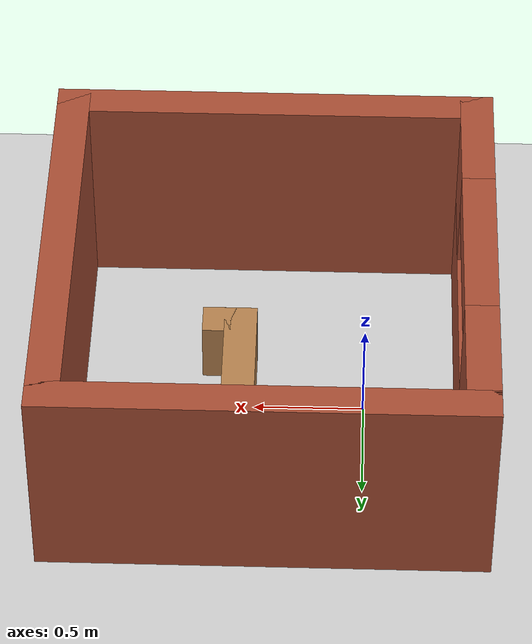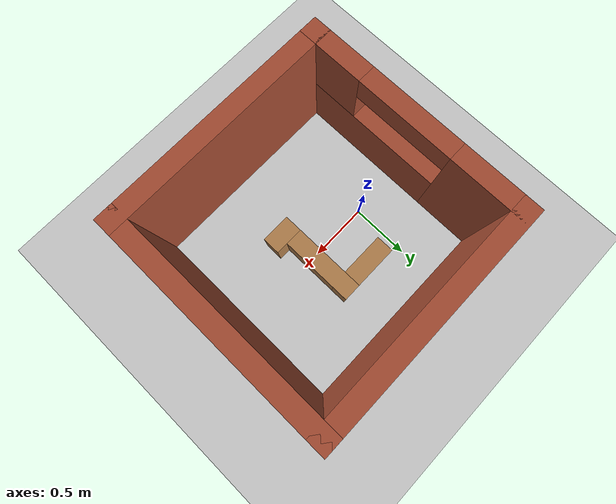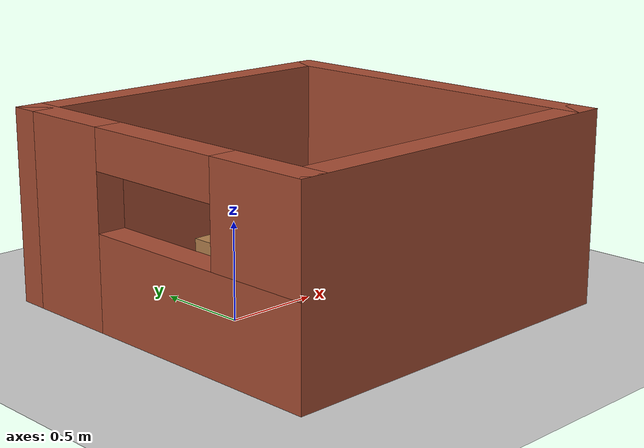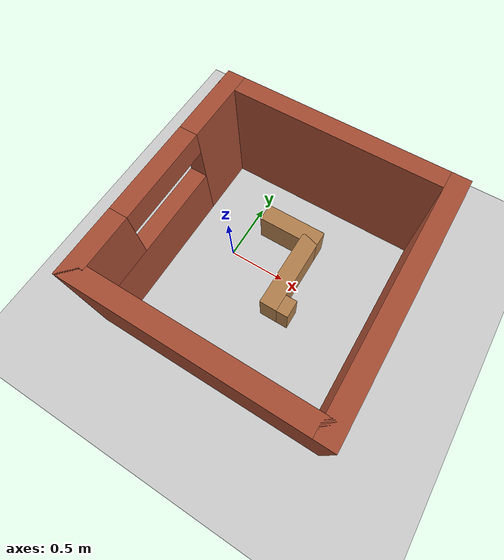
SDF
<sdf version="1.6">
 <world name="default">
  <light name="sun" type="directional">
   <pose>0 0 10 0 -0 0</pose>
   <diffuse>0.8 0.8 0.8 1</diffuse>
   <specular>0.2 0.2 0.2 1</specular>
   <attenuation>
    <range>1000</range>
    <constant>0.9</constant>
    <linear>0.01</linear>
    <quadratic>0.001</quadratic>
   </attenuation>
   <direction>-0.5 0.1 -0.9</direction>
  </light>
  <model name="ground_plane">
   <static>1</static>
   <link name="link">
    <collision name="collision">
     <geometry><plane><normal>0 0 1</normal><size>100 100</size></plane></geometry>
     <surface>
      <contact><collide_bitmask>65535</collide_bitmask></contact>
      <friction><ode><mu>100</mu><mu2>50</mu2></ode></friction>
     </surface>
    </collision>
    <visual name="visual">
     <cast_shadows>0</cast_shadows>
     <geometry><plane><normal>0 0 1</normal><size>100 100</size></plane></geometry>
     <material>
      <script><uri>file://media/materials/scripts/gazebo.material</uri><name>Gazebo/Grey</name></script>
     </material>
    </visual>
   </link>
  </model>
  <gravity>0 0 -9.8</gravity>
  <magnetic_field>6e-06 2.3e-05 -4.2e-05</magnetic_field>
  <atmosphere type="adiabatic"/>
  <physics name="default_physics" default="0" type="ode">
   <max_step_size>0.001</max_step_size>
   <real_time_factor>1</real_time_factor>
   <real_time_update_rate>1000</real_time_update_rate>
  </physics>
  <scene><ambient>0.4 0.4 0.4 1</ambient><background>0.7 0.7 0.7 1</background><shadows>1</shadows></scene>
  <audio><device>default</device></audio>
  <spherical_coordinates>
   <surface_model>EARTH_WGS84</surface_model>
   <latitude_deg>0</latitude_deg>
   <longitude_deg>0</longitude_deg>
   <elevation>0</elevation>
   <heading_deg>0</heading_deg>
  </spherical_coordinates>
  <model name="robot_world">
   <pose>0.432461 -0.048297 0 0 -0 0</pose>
   <link name="Wall_1">
    <pose>-0.925 0 0 0 -0 -1.5708</pose>
    <visual name="Wall_1_Visual_0">
     <pose>-0.675827 0 0.5 0 -0 0</pose>
     <geometry><box><size>0.647856 0.15 1</size></box></geometry>
     <material>
      <script><uri>file://media/materials/scripts/gazebo.material</uri><name>Gazebo/Bricks</name></script>
      <ambient>1 1 1 1</ambient>
     </material>
     <meta><layer>0</layer></meta>
    </visual>
    <collision name="Wall_1_Collision_0">
     <geometry><box><size>0.647856 0.15 1</size></box></geometry>
     <pose>-0.675827 0 0.5 0 -0 0</pose>
    </collision>
    <visual name="Wall_1_Visual_1">
     <pose>0.323928 0 0.246 0 -0 0</pose>
     <geometry><box><size>1.35165 0.15 0.492</size></box></geometry>
     <material>
      <script><uri>file://media/materials/scripts/gazebo.material</uri><name>Gazebo/Bricks</name></script>
      <ambient>1 1 1 1</ambient>
     </material>
     <meta><layer>0</layer></meta>
    </visual>
    <collision name="Wall_1_Collision_1">
     <geometry><box><size>1.35165 0.15 0.492</size></box></geometry>
     <pose>0.323928 0 0.246 0 -0 0</pose>
    </collision>
    <visual name="Wall_1_Visual_2">
     <pose>0.723928 0 0.746 0 -0 0</pose>
     <geometry><box><size>0.551654 0.15 0.508</size></box></geometry>
     <material>
      <script><uri>file://media/materials/scripts/gazebo.material</uri><name>Gazebo/Bricks</name></script>
      <ambient>1 1 1 1</ambient>
     </material>
     <meta><layer>0</layer></meta>
    </visual>
    <collision name="Wall_1_Collision_2">
     <geometry><box><size>0.551654 0.15 0.508</size></box></geometry>
     <pose>0.723928 0 0.746 0 -0 0</pose>
    </collision>
    <visual name="Wall_1_Visual_3">
     <pose>0.048101 0 0.896 0 -0 0</pose>
     <geometry><box><size>0.8 0.15 0.208</size></box></geometry>
     <material>
      <script><uri>file://media/materials/scripts/gazebo.material</uri><name>Gazebo/Bricks</name></script>
      <ambient>1 1 1 1</ambient>
     </material>
     <meta><layer>0</layer></meta>
    </visual>
    <collision name="Wall_1_Collision_3">
     <geometry><box><size>0.8 0.15 0.208</size></box></geometry>
     <pose>0.048101 0 0.896 0 -0 0</pose>
    </collision>
   </link>
   <link name="Wall_2">
    <collision name="Wall_2_Collision">
     <geometry><box><size>2 0.15 1</size></box></geometry>
     <pose>0 0 0.5 0 -0 0</pose>
    </collision>
    <visual name="Wall_2_Visual">
     <pose>0 0 0.5 0 -0 0</pose>
     <geometry><box><size>2 0.15 1</size></box></geometry>
     <material>
      <script><uri>file://media/materials/scripts/gazebo.material</uri><name>Gazebo/Bricks</name></script>
      <ambient>1 1 1 1</ambient>
     </material>
     <meta><layer>0</layer></meta>
    </visual>
    <pose>0 -0.925 0 0 -0 0</pose>
   </link>
   <link name="Wall_3">
    <collision name="Wall_3_Collision">
     <geometry><box><size>1.99951 0.15 1</size></box></geometry>
     <pose>0 0 0.5 0 -0 0</pose>
    </collision>
    <visual name="Wall_3_Visual">
     <pose>0 0 0.5 0 -0 0</pose>
     <geometry><box><size>1.99951 0.15 1</size></box></geometry>
     <material>
      <script><uri>file://media/materials/scripts/gazebo.material</uri><name>Gazebo/Bricks</name></script>
      <ambient>1 1 1 1</ambient>
     </material>
     <meta><layer>0</layer></meta>
    </visual>
    <pose>0.925 0 0 0 -0 1.5708</pose>
   </link>
   <link name="Wall_4">
    <collision name="Wall_4_Collision">
     <geometry><box><size>2 0.15 1</size></box></geometry>
     <pose>0 0 0.5 0 -0 0</pose>
    </collision>
    <visual name="Wall_4_Visual">
     <pose>0 0 0.5 0 -0 0</pose>
     <geometry><box><size>2 0.15 1</size></box></geometry>
     <material>
      <script><uri>file://media/materials/scripts/gazebo.material</uri><name>Gazebo/Bricks</name></script>
      <ambient>1 1 1 1</ambient>
     </material>
     <meta><layer>0</layer></meta>
    </visual>
    <pose>0 0.925 0 0 -0 3.14159</pose>
   </link>
   <link name="Wall_6">
    <collision name="Wall_6_Collision">
     <geometry><box><size>0.526201 0.15 0.3</size></box></geometry>
     <pose>0 0 0.15 0 -0 0</pose>
    </collision>
    <visual name="Wall_6_Visual">
     <pose>0 0 0.15 0 -0 0</pose>
     <geometry><box><size>0.526201 0.15 0.3</size></box></geometry>
     <material>
      <script><uri>file://media/materials/scripts/gazebo.material</uri><name>Gazebo/Wood</name></script>
      <ambient>1 1 1 1</ambient>
     </material>
     <meta><layer>0</layer></meta>
    </visual>
    <pose>-0.052 0.405 0 0 -0 0</pose>
   </link>
   <link name="Wall_7">
    <collision name="Wall_7_Collision">
     <geometry><box><size>0.777673 0.15 0.3</size></box></geometry>
     <pose>0 0 0.15 0 -0 0</pose>
    </collision>
    <visual name="Wall_7_Visual">
     <pose>0 0 0.15 0 -0 0</pose>
     <geometry><box><size>0.777673 0.15 0.3</size></box></geometry>
     <material>
      <script><uri>file://media/materials/scripts/gazebo.material</uri><name>Gazebo/Wood</name></script>
      <ambient>1 1 1 1</ambient>
     </material>
     <meta><layer>0</layer></meta>
    </visual>
    <pose>0.1365 0.0915 0 0 -0 -1.5692</pose>
   </link>
   <link name="Wall_8">
    <collision name="Wall_8_Collision">
     <geometry><box><size>0.25 0.15 0.3</size></box></geometry>
     <pose>0 0 0.15 0 -0 0</pose>
    </collision>
    <visual name="Wall_8_Visual">
     <pose>0 0 0.15 0 -0 0</pose>
     <geometry><box><size>0.25 0.15 0.3</size></box></geometry>
     <material>
      <script><uri>file://media/materials/scripts/gazebo.material</uri><name>Gazebo/Wood</name></script>
      <ambient>1 1 1 1</ambient>
     </material>
     <meta><layer>0</layer></meta>
    </visual>
    <pose>0.187 -0.222 0 0 -0 0</pose>
   </link>
   <static>1</static>
  </model>
 </world>
</sdf>
